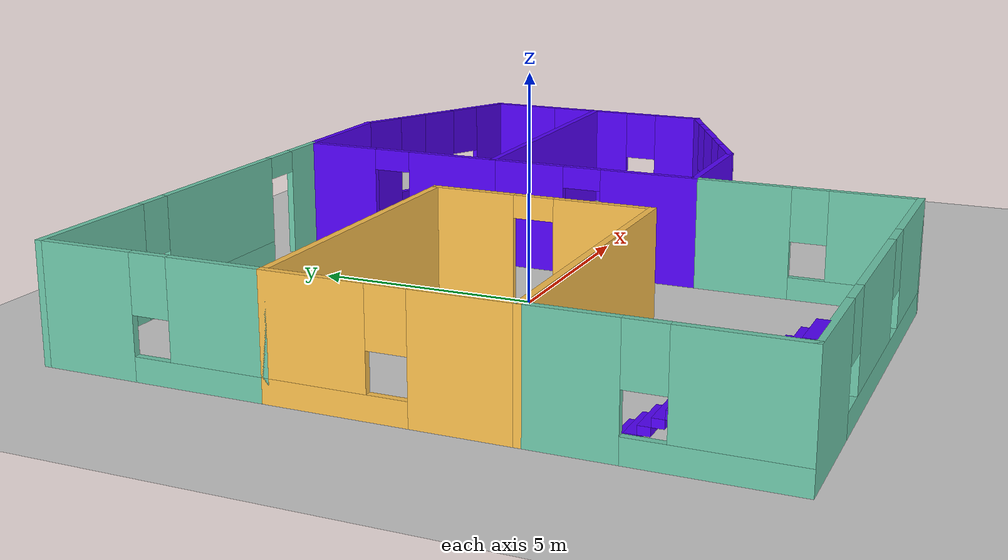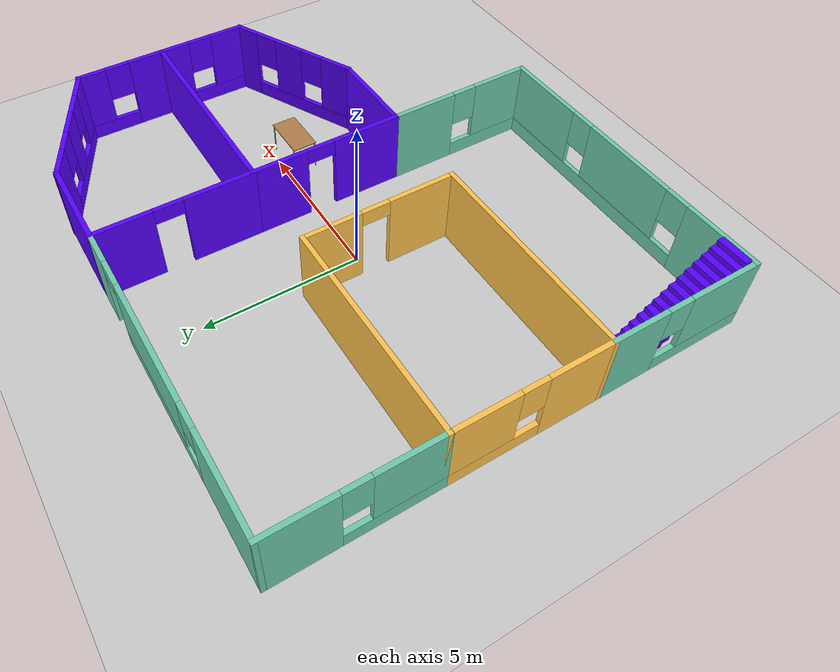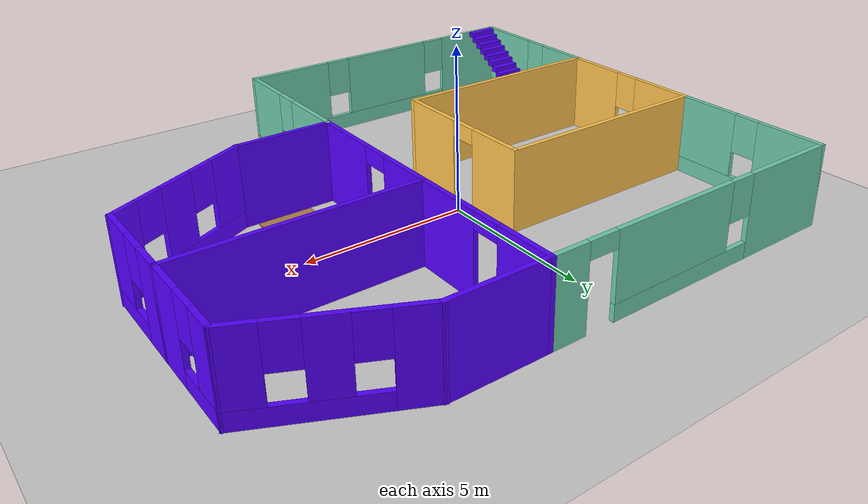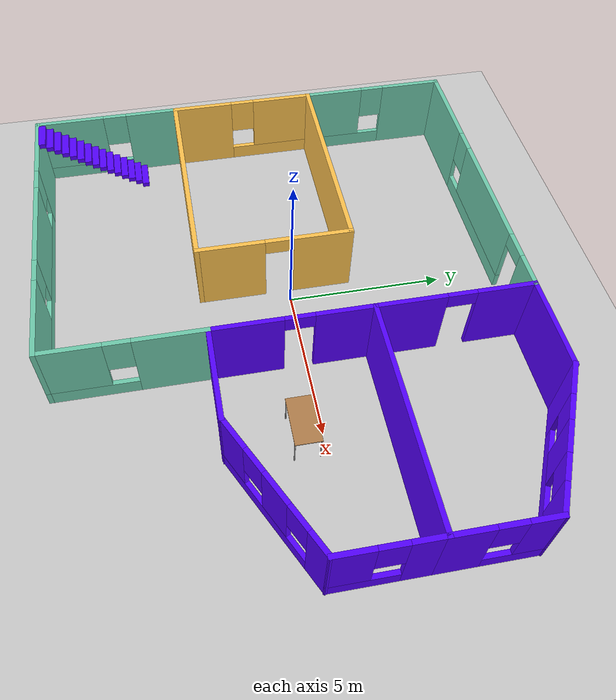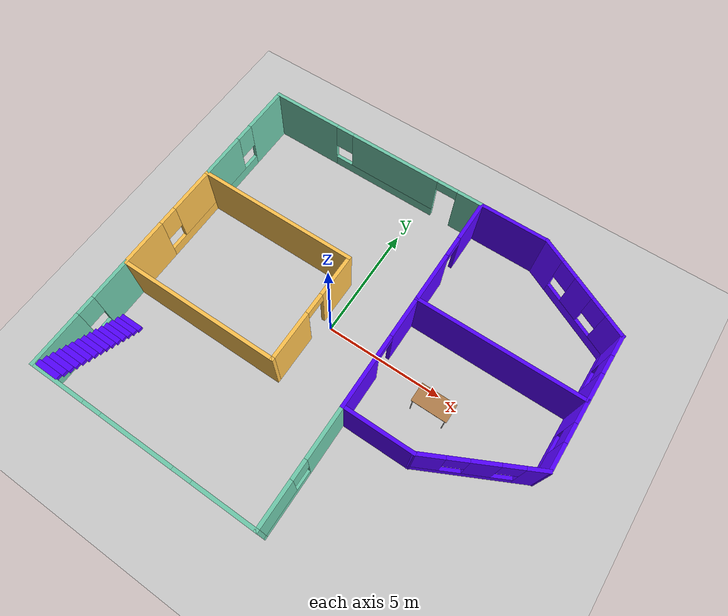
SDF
<sdf version="1.6">
 <world name="default">
  <model name="ground_plane">
   <static>1</static>
   <link name="link">
    <collision name="collision">
     <geometry><plane><normal>0 0 1</normal><size>100 100</size></plane></geometry>
     <surface><friction><ode><mu>100</mu><mu2>50</mu2></ode></friction></surface>
    </collision>
    <visual name="visual">
     <cast_shadows>0</cast_shadows>
     <geometry><plane><normal>0 0 1</normal><size>100 100</size></plane></geometry>
     <material>
      <script><uri>file://media/materials/scripts/gazebo.material</uri><name>Gazebo/Grey</name></script>
     </material>
    </visual>
   </link>
  </model>
  <model name="building">
   <pose>1.04082 -0.442603 0 0 -0 0</pose>
   <link name="Stairs_0">
    <visual name="Stairs_0_Visual_0">
     <pose>-7.75322 -3.8606 0.083333 0 -0 0</pose>
     <geometry><box><size>1 0.233333 0.166667</size></box></geometry>
     <material>
      <script><uri>file://media/materials/scripts/gazebo.material</uri><name>Gazebo/Grey</name></script>
      <ambient>0.333333 0 1 1</ambient>
     </material>
     <meta><layer>0</layer></meta>
    </visual>
    <collision name="Stairs_0_Collision_0">
     <geometry><box><size>1 0.233333 0.166667</size></box></geometry>
     <pose>-7.75322 -3.8606 0.083333 0 -0 0</pose>
    </collision>
    <visual name="Stairs_0_Visual_1">
     <pose>-7.75322 -4.09394 0.25 0 -0 0</pose>
     <geometry><box><size>1 0.233333 0.166667</size></box></geometry>
     <material>
      <script><uri>file://media/materials/scripts/gazebo.material</uri><name>Gazebo/Grey</name></script>
      <ambient>0.333333 0 1 1</ambient>
     </material>
     <meta><layer>0</layer></meta>
    </visual>
    <collision name="Stairs_0_Collision_1">
     <geometry><box><size>1 0.233333 0.166667</size></box></geometry>
     <pose>-7.75322 -4.09394 0.25 0 -0 0</pose>
    </collision>
    <visual name="Stairs_0_Visual_2">
     <pose>-7.75322 -4.32727 0.416667 0 -0 0</pose>
     <geometry><box><size>1 0.233333 0.166667</size></box></geometry>
     <material>
      <script><uri>file://media/materials/scripts/gazebo.material</uri><name>Gazebo/Grey</name></script>
      <ambient>0.333333 0 1 1</ambient>
     </material>
     <meta><layer>0</layer></meta>
    </visual>
    <collision name="Stairs_0_Collision_2">
     <geometry><box><size>1 0.233333 0.166667</size></box></geometry>
     <pose>-7.75322 -4.32727 0.416667 0 -0 0</pose>
    </collision>
    <visual name="Stairs_0_Visual_3">
     <pose>-7.75322 -4.5606 0.583333 0 -0 0</pose>
     <geometry><box><size>1 0.233333 0.166667</size></box></geometry>
     <material>
      <script><uri>file://media/materials/scripts/gazebo.material</uri><name>Gazebo/Grey</name></script>
      <ambient>0.333333 0 1 1</ambient>
     </material>
     <meta><layer>0</layer></meta>
    </visual>
    <collision name="Stairs_0_Collision_3">
     <geometry><box><size>1 0.233333 0.166667</size></box></geometry>
     <pose>-7.75322 -4.5606 0.583333 0 -0 0</pose>
    </collision>
    <visual name="Stairs_0_Visual_4">
     <pose>-7.75322 -4.79394 0.75 0 -0 0</pose>
     <geometry><box><size>1 0.233333 0.166667</size></box></geometry>
     <material>
      <script><uri>file://media/materials/scripts/gazebo.material</uri><name>Gazebo/Grey</name></script>
      <ambient>0.333333 0 1 1</ambient>
     </material>
     <meta><layer>0</layer></meta>
    </visual>
    <collision name="Stairs_0_Collision_4">
     <geometry><box><size>1 0.233333 0.166667</size></box></geometry>
     <pose>-7.75322 -4.79394 0.75 0 -0 0</pose>
    </collision>
    <visual name="Stairs_0_Visual_5">
     <pose>-7.75322 -5.02727 0.916667 0 -0 0</pose>
     <geometry><box><size>1 0.233333 0.166667</size></box></geometry>
     <material>
      <script><uri>file://media/materials/scripts/gazebo.material</uri><name>Gazebo/Grey</name></script>
      <ambient>0.333333 0 1 1</ambient>
     </material>
     <meta><layer>0</layer></meta>
    </visual>
    <collision name="Stairs_0_Collision_5">
     <geometry><box><size>1 0.233333 0.166667</size></box></geometry>
     <pose>-7.75322 -5.02727 0.916667 0 -0 0</pose>
    </collision>
    <visual name="Stairs_0_Visual_6">
     <pose>-7.75322 -5.2606 1.08333 0 -0 0</pose>
     <geometry><box><size>1 0.233333 0.166667</size></box></geometry>
     <material>
      <script><uri>file://media/materials/scripts/gazebo.material</uri><name>Gazebo/Grey</name></script>
      <ambient>0.333333 0 1 1</ambient>
     </material>
     <meta><layer>0</layer></meta>
    </visual>
    <collision name="Stairs_0_Collision_6">
     <geometry><box><size>1 0.233333 0.166667</size></box></geometry>
     <pose>-7.75322 -5.2606 1.08333 0 -0 0</pose>
    </collision>
    <visual name="Stairs_0_Visual_7">
     <pose>-7.75322 -5.49394 1.25 0 -0 0</pose>
     <geometry><box><size>1 0.233333 0.166667</size></box></geometry>
     <material>
      <script><uri>file://media/materials/scripts/gazebo.material</uri><name>Gazebo/Grey</name></script>
      <ambient>0.333333 0 1 1</ambient>
     </material>
     <meta><layer>0</layer></meta>
    </visual>
    <collision name="Stairs_0_Collision_7">
     <geometry><box><size>1 0.233333 0.166667</size></box></geometry>
     <pose>-7.75322 -5.49394 1.25 0 -0 0</pose>
    </collision>
    <visual name="Stairs_0_Visual_8">
     <pose>-7.75322 -5.72727 1.41667 0 -0 0</pose>
     <geometry><box><size>1 0.233333 0.166667</size></box></geometry>
     <material>
      <script><uri>file://media/materials/scripts/gazebo.material</uri><name>Gazebo/Grey</name></script>
      <ambient>0.333333 0 1 1</ambient>
     </material>
     <meta><layer>0</layer></meta>
    </visual>
    <collision name="Stairs_0_Collision_8">
     <geometry><box><size>1 0.233333 0.166667</size></box></geometry>
     <pose>-7.75322 -5.72727 1.41667 0 -0 0</pose>
    </collision>
    <visual name="Stairs_0_Visual_9">
     <pose>-7.75322 -5.9606 1.58333 0 -0 0</pose>
     <geometry><box><size>1 0.233333 0.166667</size></box></geometry>
     <material>
      <script><uri>file://media/materials/scripts/gazebo.material</uri><name>Gazebo/Grey</name></script>
      <ambient>0.333333 0 1 1</ambient>
     </material>
     <meta><layer>0</layer></meta>
    </visual>
    <collision name="Stairs_0_Collision_9">
     <geometry><box><size>1 0.233333 0.166667</size></box></geometry>
     <pose>-7.75322 -5.9606 1.58333 0 -0 0</pose>
    </collision>
    <visual name="Stairs_0_Visual_10">
     <pose>-7.75322 -6.19394 1.75 0 -0 0</pose>
     <geometry><box><size>1 0.233333 0.166667</size></box></geometry>
     <material>
      <script><uri>file://media/materials/scripts/gazebo.material</uri><name>Gazebo/Grey</name></script>
      <ambient>0.333333 0 1 1</ambient>
     </material>
     <meta><layer>0</layer></meta>
    </visual>
    <collision name="Stairs_0_Collision_10">
     <geometry><box><size>1 0.233333 0.166667</size></box></geometry>
     <pose>-7.75322 -6.19394 1.75 0 -0 0</pose>
    </collision>
    <visual name="Stairs_0_Visual_11">
     <pose>-7.75322 -6.42727 1.91667 0 -0 0</pose>
     <geometry><box><size>1 0.233333 0.166667</size></box></geometry>
     <material>
      <script><uri>file://media/materials/scripts/gazebo.material</uri><name>Gazebo/Grey</name></script>
      <ambient>0.333333 0 1 1</ambient>
     </material>
     <meta><layer>0</layer></meta>
    </visual>
    <collision name="Stairs_0_Collision_11">
     <geometry><box><size>1 0.233333 0.166667</size></box></geometry>
     <pose>-7.75322 -6.42727 1.91667 0 -0 0</pose>
    </collision>
    <visual name="Stairs_0_Visual_12">
     <pose>-7.75322 -6.6606 2.08333 0 -0 0</pose>
     <geometry><box><size>1 0.233333 0.166667</size></box></geometry>
     <material>
      <script><uri>file://media/materials/scripts/gazebo.material</uri><name>Gazebo/Grey</name></script>
      <ambient>0.333333 0 1 1</ambient>
     </material>
     <meta><layer>0</layer></meta>
    </visual>
    <collision name="Stairs_0_Collision_12">
     <geometry><box><size>1 0.233333 0.166667</size></box></geometry>
     <pose>-7.75322 -6.6606 2.08333 0 -0 0</pose>
    </collision>
    <visual name="Stairs_0_Visual_13">
     <pose>-7.75322 -6.89394 2.25 0 -0 0</pose>
     <geometry><box><size>1 0.233333 0.166667</size></box></geometry>
     <material>
      <script><uri>file://media/materials/scripts/gazebo.material</uri><name>Gazebo/Grey</name></script>
      <ambient>0.333333 0 1 1</ambient>
     </material>
     <meta><layer>0</layer></meta>
    </visual>
    <collision name="Stairs_0_Collision_13">
     <geometry><box><size>1 0.233333 0.166667</size></box></geometry>
     <pose>-7.75322 -6.89394 2.25 0 -0 0</pose>
    </collision>
    <visual name="Stairs_0_Visual_14">
     <pose>-7.75322 -7.12727 2.41667 0 -0 0</pose>
     <geometry><box><size>1 0.233333 0.166667</size></box></geometry>
     <material>
      <script><uri>file://media/materials/scripts/gazebo.material</uri><name>Gazebo/Grey</name></script>
      <ambient>0.333333 0 1 1</ambient>
     </material>
     <meta><layer>0</layer></meta>
    </visual>
    <collision name="Stairs_0_Collision_14">
     <geometry><box><size>1 0.233333 0.166667</size></box></geometry>
     <pose>-7.75322 -7.12727 2.41667 0 -0 0</pose>
    </collision>
   </link>
   <link name="Wall_11">
    <pose>-8.36281 -4.86281 0 0 0 -1.5708</pose>
    <visual name="Wall_11_Visual_0">
     <pose>-1.578 0 1.25 0 -0 0</pose>
     <geometry><box><size>1.84401 0.15 2.5</size></box></geometry>
     <material>
      <script><uri>file://media/materials/scripts/gazebo.material</uri><name>Gazebo/Grey</name></script>
      <ambient>0.435294 0.796078 0.67451 1</ambient>
     </material>
     <meta><layer>0</layer></meta>
    </visual>
    <collision name="Wall_11_Collision_0">
     <geometry><box><size>1.84401 0.15 2.5</size></box></geometry>
     <pose>-1.578 0 1.25 0 -0 0</pose>
    </collision>
    <visual name="Wall_11_Visual_1">
     <pose>0.922004 0 0.25 0 -0 0</pose>
     <geometry><box><size>3.15599 0.15 0.5</size></box></geometry>
     <material>
      <script><uri>file://media/materials/scripts/gazebo.material</uri><name>Gazebo/Grey</name></script>
      <ambient>0.435294 0.796078 0.67451 1</ambient>
     </material>
     <meta><layer>0</layer></meta>
    </visual>
    <collision name="Wall_11_Collision_1">
     <geometry><box><size>3.15599 0.15 0.5</size></box></geometry>
     <pose>0.922004 0 0.25 0 -0 0</pose>
    </collision>
    <visual name="Wall_11_Visual_2">
     <pose>1.322 0 1.5 0 -0 0</pose>
     <geometry><box><size>2.35599 0.15 2</size></box></geometry>
     <material>
      <script><uri>file://media/materials/scripts/gazebo.material</uri><name>Gazebo/Grey</name></script>
      <ambient>0.435294 0.796078 0.67451 1</ambient>
     </material>
     <meta><layer>0</layer></meta>
    </visual>
    <collision name="Wall_11_Collision_2">
     <geometry><box><size>2.35599 0.15 2</size></box></geometry>
     <pose>1.322 0 1.5 0 -0 0</pose>
    </collision>
    <visual name="Wall_11_Visual_3">
     <pose>-0.255991 0 1.9 0 -0 0</pose>
     <geometry><box><size>0.8 0.15 1.2</size></box></geometry>
     <material>
      <script><uri>file://media/materials/scripts/gazebo.material</uri><name>Gazebo/Grey</name></script>
      <ambient>0.435294 0.796078 0.67451 1</ambient>
     </material>
     <meta><layer>0</layer></meta>
    </visual>
    <collision name="Wall_11_Collision_3">
     <geometry><box><size>0.8 0.15 1.2</size></box></geometry>
     <pose>-0.255991 0 1.9 0 -0 0</pose>
    </collision>
   </link>
   <link name="Wall_12">
    <pose>-3.43781 -7.28781 0 0 -0 0</pose>
    <visual name="Wall_12_Visual_0">
     <pose>-3.75645 0 1.25 0 -0 0</pose>
     <geometry><box><size>2.48709 0.15 2.5</size></box></geometry>
     <material>
      <script><uri>file://media/materials/scripts/gazebo.material</uri><name>Gazebo/Grey</name></script>
      <ambient>0.435294 0.796078 0.67451 1</ambient>
     </material>
     <meta><layer>0</layer></meta>
    </visual>
    <collision name="Wall_12_Collision_0">
     <geometry><box><size>2.48709 0.15 2.5</size></box></geometry>
     <pose>-3.75645 0 1.25 0 -0 0</pose>
    </collision>
    <visual name="Wall_12_Visual_1">
     <pose>1.24354 0 0.25 0 -0 0</pose>
     <geometry><box><size>7.51291 0.15 0.5</size></box></geometry>
     <material>
      <script><uri>file://media/materials/scripts/gazebo.material</uri><name>Gazebo/Grey</name></script>
      <ambient>0.435294 0.796078 0.67451 1</ambient>
     </material>
     <meta><layer>0</layer></meta>
    </visual>
    <collision name="Wall_12_Collision_1">
     <geometry><box><size>7.51291 0.15 0.5</size></box></geometry>
     <pose>1.24354 0 0.25 0 -0 0</pose>
    </collision>
    <visual name="Wall_12_Visual_2">
     <pose>-0.124545 0 1.5 0 -0 0</pose>
     <geometry><box><size>3.17673 0.15 2</size></box></geometry>
     <material>
      <script><uri>file://media/materials/scripts/gazebo.material</uri><name>Gazebo/Grey</name></script>
      <ambient>0.435294 0.796078 0.67451 1</ambient>
     </material>
     <meta><layer>0</layer></meta>
    </visual>
    <collision name="Wall_12_Collision_2">
     <geometry><box><size>3.17673 0.15 2</size></box></geometry>
     <pose>-0.124545 0 1.5 0 -0 0</pose>
    </collision>
    <visual name="Wall_12_Visual_3">
     <pose>3.63191 0 1.5 0 -0 0</pose>
     <geometry><box><size>2.73618 0.15 2</size></box></geometry>
     <material>
      <script><uri>file://media/materials/scripts/gazebo.material</uri><name>Gazebo/Grey</name></script>
      <ambient>0.435294 0.796078 0.67451 1</ambient>
     </material>
     <meta><layer>0</layer></meta>
    </visual>
    <collision name="Wall_12_Collision_3">
     <geometry><box><size>2.73618 0.15 2</size></box></geometry>
     <pose>3.63191 0 1.5 0 -0 0</pose>
    </collision>
    <visual name="Wall_12_Visual_4">
     <pose>-2.11291 0 1.9 0 -0 0</pose>
     <geometry><box><size>0.8 0.15 1.2</size></box></geometry>
     <material>
      <script><uri>file://media/materials/scripts/gazebo.material</uri><name>Gazebo/Grey</name></script>
      <ambient>0.435294 0.796078 0.67451 1</ambient>
     </material>
     <meta><layer>0</layer></meta>
    </visual>
    <collision name="Wall_12_Collision_4">
     <geometry><box><size>0.8 0.15 1.2</size></box></geometry>
     <pose>-2.11291 0 1.9 0 -0 0</pose>
    </collision>
    <visual name="Wall_12_Visual_5">
     <pose>1.86382 0 1.9 0 -0 0</pose>
     <geometry><box><size>0.8 0.15 1.2</size></box></geometry>
     <material>
      <script><uri>file://media/materials/scripts/gazebo.material</uri><name>Gazebo/Grey</name></script>
      <ambient>0.435294 0.796078 0.67451 1</ambient>
     </material>
     <meta><layer>0</layer></meta>
    </visual>
    <collision name="Wall_12_Collision_5">
     <geometry><box><size>0.8 0.15 1.2</size></box></geometry>
     <pose>1.86382 0 1.9 0 -0 0</pose>
    </collision>
   </link>
   <link name="Wall_15">
    <pose>-3.43781 7.26219 0 0 -0 0</pose>
    <visual name="Wall_15_Visual_0">
     <pose>-3.45055 0 1.25 0 -0 0</pose>
     <geometry><box><size>3.09889 0.15 2.5</size></box></geometry>
     <material>
      <script><uri>file://media/materials/scripts/gazebo.material</uri><name>Gazebo/Grey</name></script>
      <ambient>0.435294 0.796078 0.67451 1</ambient>
     </material>
     <meta><layer>0</layer></meta>
    </visual>
    <collision name="Wall_15_Collision_0">
     <geometry><box><size>3.09889 0.15 2.5</size></box></geometry>
     <pose>-3.45055 0 1.25 0 -0 0</pose>
    </collision>
    <visual name="Wall_15_Visual_1">
     <pose>4.42166 0 1.25 0 -0 0</pose>
     <geometry><box><size>1.15667 0.15 2.5</size></box></geometry>
     <material>
      <script><uri>file://media/materials/scripts/gazebo.material</uri><name>Gazebo/Grey</name></script>
      <ambient>0.435294 0.796078 0.67451 1</ambient>
     </material>
     <meta><layer>0</layer></meta>
    </visual>
    <collision name="Wall_15_Collision_1">
     <geometry><box><size>1.15667 0.15 2.5</size></box></geometry>
     <pose>4.42166 0 1.25 0 -0 0</pose>
    </collision>
    <visual name="Wall_15_Visual_2">
     <pose>0.521113 0 0.25 0 -0 0</pose>
     <geometry><box><size>4.84444 0.15 0.5</size></box></geometry>
     <material>
      <script><uri>file://media/materials/scripts/gazebo.material</uri><name>Gazebo/Grey</name></script>
      <ambient>0.435294 0.796078 0.67451 1</ambient>
     </material>
     <meta><layer>0</layer></meta>
    </visual>
    <collision name="Wall_15_Collision_2">
     <geometry><box><size>4.84444 0.15 0.5</size></box></geometry>
     <pose>0.521113 0 0.25 0 -0 0</pose>
    </collision>
    <visual name="Wall_15_Visual_3">
     <pose>0.921113 0 1.5 0 -0 0</pose>
     <geometry><box><size>4.04444 0.15 2</size></box></geometry>
     <material>
      <script><uri>file://media/materials/scripts/gazebo.material</uri><name>Gazebo/Grey</name></script>
      <ambient>0.435294 0.796078 0.67451 1</ambient>
     </material>
     <meta><layer>0</layer></meta>
    </visual>
    <collision name="Wall_15_Collision_3">
     <geometry><box><size>4.04444 0.15 2</size></box></geometry>
     <pose>0.921113 0 1.5 0 -0 0</pose>
    </collision>
    <visual name="Wall_15_Visual_4">
     <pose>-1.50111 0 1.9 0 -0 0</pose>
     <geometry><box><size>0.8 0.15 1.2</size></box></geometry>
     <material>
      <script><uri>file://media/materials/scripts/gazebo.material</uri><name>Gazebo/Grey</name></script>
      <ambient>0.435294 0.796078 0.67451 1</ambient>
     </material>
     <meta><layer>0</layer></meta>
    </visual>
    <collision name="Wall_15_Collision_4">
     <geometry><box><size>0.8 0.15 1.2</size></box></geometry>
     <pose>-1.50111 0 1.9 0 -0 0</pose>
    </collision>
    <visual name="Wall_15_Visual_5">
     <pose>3.39333 0 2.25 0 -0 0</pose>
     <geometry><box><size>0.9 0.15 0.5</size></box></geometry>
     <material>
      <script><uri>file://media/materials/scripts/gazebo.material</uri><name>Gazebo/Grey</name></script>
      <ambient>0.435294 0.796078 0.67451 1</ambient>
     </material>
     <meta><layer>0</layer></meta>
    </visual>
    <collision name="Wall_15_Collision_5">
     <geometry><box><size>0.9 0.15 0.5</size></box></geometry>
     <pose>3.39333 0 2.25 0 -0 0</pose>
    </collision>
   </link>
   <link name="Wall_20">
    <pose>1.48719 4.83719 0 0 0 -1.5708</pose>
    <visual name="Wall_20_Visual_0">
     <pose>-1.57096 0 1.25 0 -0 0</pose>
     <geometry><box><size>1.85809 0.15 2.5</size></box></geometry>
     <material>
      <script><uri>file://media/materials/scripts/gazebo.material</uri><name>Gazebo/Grey</name></script>
      <ambient>0.333333 0 1 1</ambient>
     </material>
     <meta><layer>0</layer></meta>
    </visual>
    <collision name="Wall_20_Collision_0">
     <geometry><box><size>1.85809 0.15 2.5</size></box></geometry>
     <pose>-1.57096 0 1.25 0 -0 0</pose>
    </collision>
    <visual name="Wall_20_Visual_1">
     <pose>1.37904 0 1.25 0 -0 0</pose>
     <geometry><box><size>2.24191 0.15 2.5</size></box></geometry>
     <material>
      <script><uri>file://media/materials/scripts/gazebo.material</uri><name>Gazebo/Grey</name></script>
      <ambient>0.333333 0 1 1</ambient>
     </material>
     <meta><layer>0</layer></meta>
    </visual>
    <collision name="Wall_20_Collision_1">
     <geometry><box><size>2.24191 0.15 2.5</size></box></geometry>
     <pose>1.37904 0 1.25 0 -0 0</pose>
    </collision>
    <visual name="Wall_20_Visual_2">
     <pose>-0.191914 0 2.25 0 -0 0</pose>
     <geometry><box><size>0.9 0.15 0.5</size></box></geometry>
     <material>
      <script><uri>file://media/materials/scripts/gazebo.material</uri><name>Gazebo/Grey</name></script>
      <ambient>0.333333 0 1 1</ambient>
     </material>
     <meta><layer>0</layer></meta>
    </visual>
    <collision name="Wall_20_Collision_2">
     <geometry><box><size>0.9 0.15 0.5</size></box></geometry>
     <pose>-0.191914 0 2.25 0 -0 0</pose>
    </collision>
   </link>
   <link name="Wall_21">
    <collision name="Wall_21_Collision">
     <geometry><box><size>7 0.15 2.5</size></box></geometry>
     <pose>0 0 1.25 0 -0 0</pose>
    </collision>
    <visual name="Wall_21_Visual">
     <pose>0 0 1.25 0 -0 0</pose>
     <geometry><box><size>7 0.15 2.5</size></box></geometry>
     <material>
      <script><uri>file://media/materials/scripts/gazebo.material</uri><name>Gazebo/Grey</name></script>
      <ambient>0.333333 0 1 1</ambient>
     </material>
     <meta><layer>0</layer></meta>
    </visual>
    <pose>4.91219 2.41219 0 0 -0 0</pose>
   </link>
   <link name="Wall_22">
    <pose>8.33719 3.83719 0 0 -0 1.5708</pose>
    <visual name="Wall_22_Visual_0">
     <pose>-0.874077 0 1.25 0 -0 0</pose>
     <geometry><box><size>1.25185 0.15 2.5</size></box></geometry>
     <material>
      <script><uri>file://media/materials/scripts/gazebo.material</uri><name>Gazebo/Grey</name></script>
      <ambient>0.333333 0 1 1</ambient>
     </material>
     <meta><layer>0</layer></meta>
    </visual>
    <collision name="Wall_22_Collision_0">
     <geometry><box><size>1.25185 0.15 2.5</size></box></geometry>
     <pose>-0.874077 0 1.25 0 -0 0</pose>
    </collision>
    <visual name="Wall_22_Visual_1">
     <pose>0.625923 0 0.25 0 -0 0</pose>
     <geometry><box><size>1.74815 0.15 0.5</size></box></geometry>
     <material>
      <script><uri>file://media/materials/scripts/gazebo.material</uri><name>Gazebo/Grey</name></script>
      <ambient>0.333333 0 1 1</ambient>
     </material>
     <meta><layer>0</layer></meta>
    </visual>
    <collision name="Wall_22_Collision_1">
     <geometry><box><size>1.74815 0.15 0.5</size></box></geometry>
     <pose>0.625923 0 0.25 0 -0 0</pose>
    </collision>
    <visual name="Wall_22_Visual_2">
     <pose>1.02592 0 1.5 0 -0 0</pose>
     <geometry><box><size>0.948155 0.15 2</size></box></geometry>
     <material>
      <script><uri>file://media/materials/scripts/gazebo.material</uri><name>Gazebo/Grey</name></script>
      <ambient>0.333333 0 1 1</ambient>
     </material>
     <meta><layer>0</layer></meta>
    </visual>
    <collision name="Wall_22_Collision_2">
     <geometry><box><size>0.948155 0.15 2</size></box></geometry>
     <pose>1.02592 0 1.5 0 -0 0</pose>
    </collision>
    <visual name="Wall_22_Visual_3">
     <pose>0.151845 0 1.9 0 -0 0</pose>
     <geometry><box><size>0.8 0.15 1.2</size></box></geometry>
     <material>
      <script><uri>file://media/materials/scripts/gazebo.material</uri><name>Gazebo/Grey</name></script>
      <ambient>0.333333 0 1 1</ambient>
     </material>
     <meta><layer>0</layer></meta>
    </visual>
    <collision name="Wall_22_Collision_3">
     <geometry><box><size>0.8 0.15 1.2</size></box></geometry>
     <pose>0.151845 0 1.9 0 -0 0</pose>
    </collision>
   </link>
   <link name="Wall_24">
    <collision name="Wall_24_Collision">
     <geometry><box><size>3 0.15 2.5</size></box></geometry>
     <pose>0 0 1.25 0 -0 0</pose>
    </collision>
    <visual name="Wall_24_Visual">
     <pose>0 0 1.25 0 -0 0</pose>
     <geometry><box><size>3 0.15 2.5</size></box></geometry>
     <material>
      <script><uri>file://media/materials/scripts/gazebo.material</uri><name>Gazebo/Grey</name></script>
      <ambient>0.333333 0 1 1</ambient>
     </material>
     <meta><layer>0</layer></meta>
    </visual>
    <pose>2.91219 7.26219 0 0 -0 0</pose>
   </link>
   <link name="Wall_25">
    <pose>6.33719 6.26219 0 0 0 -0.463648</pose>
    <visual name="Wall_25_Visual_0">
     <pose>-1.77228 0 1.25 0 -0 0</pose>
     <geometry><box><size>1.07758 0.15 2.5</size></box></geometry>
     <material>
      <script><uri>file://media/materials/scripts/gazebo.material</uri><name>Gazebo/Grey</name></script>
      <ambient>0.333333 0 1 1</ambient>
     </material>
     <meta><layer>0</layer></meta>
    </visual>
    <collision name="Wall_25_Collision_0">
     <geometry><box><size>1.07758 0.15 2.5</size></box></geometry>
     <pose>-1.77228 0 1.25 0 -0 0</pose>
    </collision>
    <visual name="Wall_25_Visual_1">
     <pose>0.538789 0 0.25 0 -0 0</pose>
     <geometry><box><size>3.54456 0.15 0.5</size></box></geometry>
     <material>
      <script><uri>file://media/materials/scripts/gazebo.material</uri><name>Gazebo/Grey</name></script>
      <ambient>0.333333 0 1 1</ambient>
     </material>
     <meta><layer>0</layer></meta>
    </visual>
    <collision name="Wall_25_Collision_1">
     <geometry><box><size>3.54456 0.15 0.5</size></box></geometry>
     <pose>0.538789 0 0.25 0 -0 0</pose>
    </collision>
    <visual name="Wall_25_Visual_2">
     <pose>0.048894 0 1.5 0 -0 0</pose>
     <geometry><box><size>0.964767 0.15 2</size></box></geometry>
     <material>
      <script><uri>file://media/materials/scripts/gazebo.material</uri><name>Gazebo/Grey</name></script>
      <ambient>0.333333 0 1 1</ambient>
     </material>
     <meta><layer>0</layer></meta>
    </visual>
    <collision name="Wall_25_Collision_2">
     <geometry><box><size>0.964767 0.15 2</size></box></geometry>
     <pose>0.048894 0 1.5 0 -0 0</pose>
    </collision>
    <visual name="Wall_25_Visual_3">
     <pose>1.82117 0 1.5 0 -0 0</pose>
     <geometry><box><size>0.97979 0.15 2</size></box></geometry>
     <material>
      <script><uri>file://media/materials/scripts/gazebo.material</uri><name>Gazebo/Grey</name></script>
      <ambient>0.333333 0 1 1</ambient>
     </material>
     <meta><layer>0</layer></meta>
    </visual>
    <collision name="Wall_25_Collision_3">
     <geometry><box><size>0.97979 0.15 2</size></box></geometry>
     <pose>1.82117 0 1.5 0 -0 0</pose>
    </collision>
    <visual name="Wall_25_Visual_4">
     <pose>-0.83349 0 1.9 0 -0 0</pose>
     <geometry><box><size>0.8 0.15 1.2</size></box></geometry>
     <material>
      <script><uri>file://media/materials/scripts/gazebo.material</uri><name>Gazebo/Grey</name></script>
      <ambient>0.333333 0 1 1</ambient>
     </material>
     <meta><layer>0</layer></meta>
    </visual>
    <collision name="Wall_25_Collision_4">
     <geometry><box><size>0.8 0.15 1.2</size></box></geometry>
     <pose>-0.83349 0 1.9 0 -0 0</pose>
    </collision>
    <visual name="Wall_25_Visual_5">
     <pose>0.931278 0 1.9 0 -0 0</pose>
     <geometry><box><size>0.8 0.15 1.2</size></box></geometry>
     <material>
      <script><uri>file://media/materials/scripts/gazebo.material</uri><name>Gazebo/Grey</name></script>
      <ambient>0.333333 0 1 1</ambient>
     </material>
     <meta><layer>0</layer></meta>
    </visual>
    <collision name="Wall_25_Collision_5">
     <geometry><box><size>0.8 0.15 1.2</size></box></geometry>
     <pose>0.931278 0 1.9 0 -0 0</pose>
    </collision>
   </link>
   <link name="Wall_27">
    <pose>1.48719 -0.012812 0 0 0 -1.5708</pose>
    <visual name="Wall_27_Visual_0">
     <pose>-1.57933 0 1.25 0 -0 0</pose>
     <geometry><box><size>1.84134 0.15 2.5</size></box></geometry>
     <material>
      <script><uri>file://media/materials/scripts/gazebo.material</uri><name>Gazebo/Grey</name></script>
      <ambient>0.333333 0 1 1</ambient>
     </material>
     <meta><layer>0</layer></meta>
    </visual>
    <collision name="Wall_27_Collision_0">
     <geometry><box><size>1.84134 0.15 2.5</size></box></geometry>
     <pose>-1.57933 0 1.25 0 -0 0</pose>
    </collision>
    <visual name="Wall_27_Visual_1">
     <pose>1.37067 0 1.25 0 -0 0</pose>
     <geometry><box><size>2.25866 0.15 2.5</size></box></geometry>
     <material>
      <script><uri>file://media/materials/scripts/gazebo.material</uri><name>Gazebo/Grey</name></script>
      <ambient>0.333333 0 1 1</ambient>
     </material>
     <meta><layer>0</layer></meta>
    </visual>
    <collision name="Wall_27_Collision_1">
     <geometry><box><size>2.25866 0.15 2.5</size></box></geometry>
     <pose>1.37067 0 1.25 0 -0 0</pose>
    </collision>
    <visual name="Wall_27_Visual_2">
     <pose>-0.208657 0 2.25 0 -0 0</pose>
     <geometry><box><size>0.9 0.15 0.5</size></box></geometry>
     <material>
      <script><uri>file://media/materials/scripts/gazebo.material</uri><name>Gazebo/Grey</name></script>
      <ambient>0.333333 0 1 1</ambient>
     </material>
     <meta><layer>0</layer></meta>
    </visual>
    <collision name="Wall_27_Collision_2">
     <geometry><box><size>0.9 0.15 0.5</size></box></geometry>
     <pose>-0.208657 0 2.25 0 -0 0</pose>
    </collision>
   </link>
   <link name="Wall_28">
    <collision name="Wall_28_Collision">
     <geometry><box><size>3 0.15 2.5</size></box></geometry>
     <pose>0 0 1.25 0 -0 0</pose>
    </collision>
    <visual name="Wall_28_Visual">
     <pose>0 0 1.25 0 -0 0</pose>
     <geometry><box><size>3 0.15 2.5</size></box></geometry>
     <material>
      <script><uri>file://media/materials/scripts/gazebo.material</uri><name>Gazebo/Grey</name></script>
      <ambient>0.333333 0 1 1</ambient>
     </material>
     <meta><layer>0</layer></meta>
    </visual>
    <pose>2.91219 -2.43781 0 0 -0 0</pose>
   </link>
   <link name="Wall_30">
    <pose>8.33719 0.987188 0 0 0 -1.5708</pose>
    <visual name="Wall_30_Visual_0">
     <pose>-0.997887 0 1.25 0 -0 0</pose>
     <geometry><box><size>1.00423 0.15 2.5</size></box></geometry>
     <material>
      <script><uri>file://media/materials/scripts/gazebo.material</uri><name>Gazebo/Grey</name></script>
      <ambient>0.333333 0 1 1</ambient>
     </material>
     <meta><layer>0</layer></meta>
    </visual>
    <collision name="Wall_30_Collision_0">
     <geometry><box><size>1.00423 0.15 2.5</size></box></geometry>
     <pose>-0.997887 0 1.25 0 -0 0</pose>
    </collision>
    <visual name="Wall_30_Visual_1">
     <pose>0.502113 0 0.25 0 -0 0</pose>
     <geometry><box><size>1.99577 0.15 0.5</size></box></geometry>
     <material>
      <script><uri>file://media/materials/scripts/gazebo.material</uri><name>Gazebo/Grey</name></script>
      <ambient>0.333333 0 1 1</ambient>
     </material>
     <meta><layer>0</layer></meta>
    </visual>
    <collision name="Wall_30_Collision_1">
     <geometry><box><size>1.99577 0.15 0.5</size></box></geometry>
     <pose>0.502113 0 0.25 0 -0 0</pose>
    </collision>
    <visual name="Wall_30_Visual_2">
     <pose>0.902113 0 1.5 0 -0 0</pose>
     <geometry><box><size>1.19577 0.15 2</size></box></geometry>
     <material>
      <script><uri>file://media/materials/scripts/gazebo.material</uri><name>Gazebo/Grey</name></script>
      <ambient>0.333333 0 1 1</ambient>
     </material>
     <meta><layer>0</layer></meta>
    </visual>
    <collision name="Wall_30_Collision_2">
     <geometry><box><size>1.19577 0.15 2</size></box></geometry>
     <pose>0.902113 0 1.5 0 -0 0</pose>
    </collision>
    <visual name="Wall_30_Visual_3">
     <pose>-0.095774 0 1.9 0 -0 0</pose>
     <geometry><box><size>0.8 0.15 1.2</size></box></geometry>
     <material>
      <script><uri>file://media/materials/scripts/gazebo.material</uri><name>Gazebo/Grey</name></script>
      <ambient>0.333333 0 1 1</ambient>
     </material>
     <meta><layer>0</layer></meta>
    </visual>
    <collision name="Wall_30_Collision_3">
     <geometry><box><size>0.8 0.15 1.2</size></box></geometry>
     <pose>-0.095774 0 1.9 0 -0 0</pose>
    </collision>
   </link>
   <link name="Wall_31">
    <pose>6.33719 -1.43781 0 0 0 -2.67794</pose>
    <visual name="Wall_31_Visual_0">
     <pose>-1.89022 0 1.25 0 -0 0</pose>
     <geometry><box><size>0.841691 0.15 2.5</size></box></geometry>
     <material>
      <script><uri>file://media/materials/scripts/gazebo.material</uri><name>Gazebo/Grey</name></script>
      <ambient>0.333333 0 1 1</ambient>
     </material>
     <meta><layer>0</layer></meta>
    </visual>
    <collision name="Wall_31_Collision_0">
     <geometry><box><size>0.841691 0.15 2.5</size></box></geometry>
     <pose>-1.89022 0 1.25 0 -0 0</pose>
    </collision>
    <visual name="Wall_31_Visual_1">
     <pose>0.420845 0 0.25 0 -0 0</pose>
     <geometry><box><size>3.78044 0.15 0.5</size></box></geometry>
     <material>
      <script><uri>file://media/materials/scripts/gazebo.material</uri><name>Gazebo/Grey</name></script>
      <ambient>0.333333 0 1 1</ambient>
     </material>
     <meta><layer>0</layer></meta>
    </visual>
    <collision name="Wall_31_Collision_1">
     <geometry><box><size>3.78044 0.15 0.5</size></box></geometry>
     <pose>0.420845 0 0.25 0 -0 0</pose>
    </collision>
    <visual name="Wall_31_Visual_2">
     <pose>-0.145953 0 1.5 0 -0 0</pose>
     <geometry><box><size>1.04685 0.15 2</size></box></geometry>
     <material>
      <script><uri>file://media/materials/scripts/gazebo.material</uri><name>Gazebo/Grey</name></script>
      <ambient>0.333333 0 1 1</ambient>
     </material>
     <meta><layer>0</layer></meta>
    </visual>
    <collision name="Wall_31_Collision_2">
     <geometry><box><size>1.04685 0.15 2</size></box></geometry>
     <pose>-0.145953 0 1.5 0 -0 0</pose>
    </collision>
    <visual name="Wall_31_Visual_3">
     <pose>1.74427 0 1.5 0 -0 0</pose>
     <geometry><box><size>1.1336 0.15 2</size></box></geometry>
     <material>
      <script><uri>file://media/materials/scripts/gazebo.material</uri><name>Gazebo/Grey</name></script>
      <ambient>0.333333 0 1 1</ambient>
     </material>
     <meta><layer>0</layer></meta>
    </visual>
    <collision name="Wall_31_Collision_3">
     <geometry><box><size>1.1336 0.15 2</size></box></geometry>
     <pose>1.74427 0 1.5 0 -0 0</pose>
    </collision>
    <visual name="Wall_31_Visual_4">
     <pose>-1.06938 0 1.9 0 -0 0</pose>
     <geometry><box><size>0.8 0.15 1.2</size></box></geometry>
     <material>
      <script><uri>file://media/materials/scripts/gazebo.material</uri><name>Gazebo/Grey</name></script>
      <ambient>0.333333 0 1 1</ambient>
     </material>
     <meta><layer>0</layer></meta>
    </visual>
    <collision name="Wall_31_Collision_4">
     <geometry><box><size>0.8 0.15 1.2</size></box></geometry>
     <pose>-1.06938 0 1.9 0 -0 0</pose>
    </collision>
    <visual name="Wall_31_Visual_5">
     <pose>0.777472 0 1.9 0 -0 0</pose>
     <geometry><box><size>0.8 0.15 1.2</size></box></geometry>
     <material>
      <script><uri>file://media/materials/scripts/gazebo.material</uri><name>Gazebo/Grey</name></script>
      <ambient>0.333333 0 1 1</ambient>
     </material>
     <meta><layer>0</layer></meta>
    </visual>
    <collision name="Wall_31_Collision_5">
     <geometry><box><size>0.8 0.15 1.2</size></box></geometry>
     <pose>0.777472 0 1.9 0 -0 0</pose>
    </collision>
   </link>
   <link name="Wall_33">
    <pose>1.48719 -4.86281 0 0 0 -1.5708</pose>
    <visual name="Wall_33_Visual_0">
     <pose>-1.37916 0 1.25 0 -0 0</pose>
     <geometry><box><size>2.24168 0.15 2.5</size></box></geometry>
     <material>
      <script><uri>file://media/materials/scripts/gazebo.material</uri><name>Gazebo/Grey</name></script>
      <ambient>0.435294 0.796078 0.67451 1</ambient>
     </material>
     <meta><layer>0</layer></meta>
    </visual>
    <collision name="Wall_33_Collision_0">
     <geometry><box><size>2.24168 0.15 2.5</size></box></geometry>
     <pose>-1.37916 0 1.25 0 -0 0</pose>
    </collision>
    <visual name="Wall_33_Visual_1">
     <pose>1.12084 0 0.25 0 -0 0</pose>
     <geometry><box><size>2.75832 0.15 0.5</size></box></geometry>
     <material>
      <script><uri>file://media/materials/scripts/gazebo.material</uri><name>Gazebo/Grey</name></script>
      <ambient>0.435294 0.796078 0.67451 1</ambient>
     </material>
     <meta><layer>0</layer></meta>
    </visual>
    <collision name="Wall_33_Collision_1">
     <geometry><box><size>2.75832 0.15 0.5</size></box></geometry>
     <pose>1.12084 0 0.25 0 -0 0</pose>
    </collision>
    <visual name="Wall_33_Visual_2">
     <pose>1.52084 0 1.5 0 -0 0</pose>
     <geometry><box><size>1.95832 0.15 2</size></box></geometry>
     <material>
      <script><uri>file://media/materials/scripts/gazebo.material</uri><name>Gazebo/Grey</name></script>
      <ambient>0.435294 0.796078 0.67451 1</ambient>
     </material>
     <meta><layer>0</layer></meta>
    </visual>
    <collision name="Wall_33_Collision_2">
     <geometry><box><size>1.95832 0.15 2</size></box></geometry>
     <pose>1.52084 0 1.5 0 -0 0</pose>
    </collision>
    <visual name="Wall_33_Visual_3">
     <pose>0.141682 0 1.9 0 -0 0</pose>
     <geometry><box><size>0.8 0.15 1.2</size></box></geometry>
     <material>
      <script><uri>file://media/materials/scripts/gazebo.material</uri><name>Gazebo/Grey</name></script>
      <ambient>0.435294 0.796078 0.67451 1</ambient>
     </material>
     <meta><layer>0</layer></meta>
    </visual>
    <collision name="Wall_33_Collision_3">
     <geometry><box><size>0.8 0.15 1.2</size></box></geometry>
     <pose>0.141682 0 1.9 0 -0 0</pose>
    </collision>
   </link>
   <link name="Wall_4">
    <pose>-8.36281 4.83719 0 0 0 -1.5708</pose>
    <visual name="Wall_4_Visual_0">
     <pose>-1.43889 0 1.25 0 -0 0</pose>
     <geometry><box><size>2.12222 0.15 2.5</size></box></geometry>
     <material>
      <script><uri>file://media/materials/scripts/gazebo.material</uri><name>Gazebo/Grey</name></script>
      <ambient>0.435294 0.796078 0.67451 1</ambient>
     </material>
     <meta><layer>0</layer></meta>
    </visual>
    <collision name="Wall_4_Collision_0">
     <geometry><box><size>2.12222 0.15 2.5</size></box></geometry>
     <pose>-1.43889 0 1.25 0 -0 0</pose>
    </collision>
    <visual name="Wall_4_Visual_1">
     <pose>1.06111 0 0.25 0 -0 0</pose>
     <geometry><box><size>2.87778 0.15 0.5</size></box></geometry>
     <material>
      <script><uri>file://media/materials/scripts/gazebo.material</uri><name>Gazebo/Grey</name></script>
      <ambient>0.435294 0.796078 0.67451 1</ambient>
     </material>
     <meta><layer>0</layer></meta>
    </visual>
    <collision name="Wall_4_Collision_1">
     <geometry><box><size>2.87778 0.15 0.5</size></box></geometry>
     <pose>1.06111 0 0.25 0 -0 0</pose>
    </collision>
    <visual name="Wall_4_Visual_2">
     <pose>1.46111 0 1.5 0 -0 0</pose>
     <geometry><box><size>2.07778 0.15 2</size></box></geometry>
     <material>
      <script><uri>file://media/materials/scripts/gazebo.material</uri><name>Gazebo/Grey</name></script>
      <ambient>0.435294 0.796078 0.67451 1</ambient>
     </material>
     <meta><layer>0</layer></meta>
    </visual>
    <collision name="Wall_4_Collision_2">
     <geometry><box><size>2.07778 0.15 2</size></box></geometry>
     <pose>1.46111 0 1.5 0 -0 0</pose>
    </collision>
    <visual name="Wall_4_Visual_3">
     <pose>0.022218 0 1.9 0 -0 0</pose>
     <geometry><box><size>0.8 0.15 1.2</size></box></geometry>
     <material>
      <script><uri>file://media/materials/scripts/gazebo.material</uri><name>Gazebo/Grey</name></script>
      <ambient>0.435294 0.796078 0.67451 1</ambient>
     </material>
     <meta><layer>0</layer></meta>
    </visual>
    <collision name="Wall_4_Collision_3">
     <geometry><box><size>0.8 0.15 1.2</size></box></geometry>
     <pose>0.022218 0 1.9 0 -0 0</pose>
    </collision>
   </link>
   <link name="Wall_6">
    <collision name="Wall_6_Collision">
     <geometry><box><size>7 0.15 2.5</size></box></geometry>
     <pose>0 0 1.25 0 -0 0</pose>
    </collision>
    <visual name="Wall_6_Visual">
     <pose>0 0 1.25 0 -0 0</pose>
     <geometry><box><size>7 0.15 2.5</size></box></geometry>
     <material>
      <script><uri>file://media/materials/scripts/gazebo.material</uri><name>Gazebo/Grey</name></script>
      <ambient>1 0.764706 0.305882 1</ambient>
     </material>
     <meta><layer>0</layer></meta>
    </visual>
    <pose>-4.93781 2.41219 0 0 -0 0</pose>
   </link>
   <link name="Wall_7">
    <pose>-1.51281 -0.012812 0 0 0 -1.5708</pose>
    <visual name="Wall_7_Visual_0">
     <pose>-1.54874 0 1.25 0 -0 0</pose>
     <geometry><box><size>1.90252 0.15 2.5</size></box></geometry>
     <material>
      <script><uri>file://media/materials/scripts/gazebo.material</uri><name>Gazebo/Grey</name></script>
      <ambient>1 0.764706 0.305882 1</ambient>
     </material>
     <meta><layer>0</layer></meta>
    </visual>
    <collision name="Wall_7_Collision_0">
     <geometry><box><size>1.90252 0.15 2.5</size></box></geometry>
     <pose>-1.54874 0 1.25 0 -0 0</pose>
    </collision>
    <visual name="Wall_7_Visual_1">
     <pose>1.40126 0 1.25 0 -0 0</pose>
     <geometry><box><size>2.19748 0.15 2.5</size></box></geometry>
     <material>
      <script><uri>file://media/materials/scripts/gazebo.material</uri><name>Gazebo/Grey</name></script>
      <ambient>1 0.764706 0.305882 1</ambient>
     </material>
     <meta><layer>0</layer></meta>
    </visual>
    <collision name="Wall_7_Collision_1">
     <geometry><box><size>2.19748 0.15 2.5</size></box></geometry>
     <pose>1.40126 0 1.25 0 -0 0</pose>
    </collision>
    <visual name="Wall_7_Visual_2">
     <pose>-0.147477 0 2.25 0 -0 0</pose>
     <geometry><box><size>0.9 0.15 0.5</size></box></geometry>
     <material>
      <script><uri>file://media/materials/scripts/gazebo.material</uri><name>Gazebo/Grey</name></script>
      <ambient>1 0.764706 0.305882 1</ambient>
     </material>
     <meta><layer>0</layer></meta>
    </visual>
    <collision name="Wall_7_Collision_2">
     <geometry><box><size>0.9 0.15 0.5</size></box></geometry>
     <pose>-0.147477 0 2.25 0 -0 0</pose>
    </collision>
   </link>
   <link name="Wall_8">
    <collision name="Wall_8_Collision">
     <geometry><box><size>7 0.15 2.5</size></box></geometry>
     <pose>0 0 1.25 0 -0 0</pose>
    </collision>
    <visual name="Wall_8_Visual">
     <pose>0 0 1.25 0 -0 0</pose>
     <geometry><box><size>7 0.15 2.5</size></box></geometry>
     <material>
      <script><uri>file://media/materials/scripts/gazebo.material</uri><name>Gazebo/Grey</name></script>
      <ambient>1 0.764706 0.305882 1</ambient>
     </material>
     <meta><layer>0</layer></meta>
    </visual>
    <pose>-4.93781 -2.43781 0 0 -0 3.14159</pose>
   </link>
   <link name="Wall_9">
    <pose>-8.36281 -0.012812 0 0 -0 1.5708</pose>
    <visual name="Wall_9_Visual_0">
     <pose>-1.45274 0 1.25 0 -0 0</pose>
     <geometry><box><size>2.09453 0.15 2.5</size></box></geometry>
     <material>
      <script><uri>file://media/materials/scripts/gazebo.material</uri><name>Gazebo/Grey</name></script>
      <ambient>1 0.764706 0.305882 1</ambient>
     </material>
     <meta><layer>0</layer></meta>
    </visual>
    <collision name="Wall_9_Collision_0">
     <geometry><box><size>2.09453 0.15 2.5</size></box></geometry>
     <pose>-1.45274 0 1.25 0 -0 0</pose>
    </collision>
    <visual name="Wall_9_Visual_1">
     <pose>1.04726 0 0.25 0 -0 0</pose>
     <geometry><box><size>2.90547 0.15 0.5</size></box></geometry>
     <material>
      <script><uri>file://media/materials/scripts/gazebo.material</uri><name>Gazebo/Grey</name></script>
      <ambient>1 0.764706 0.305882 1</ambient>
     </material>
     <meta><layer>0</layer></meta>
    </visual>
    <collision name="Wall_9_Collision_1">
     <geometry><box><size>2.90547 0.15 0.5</size></box></geometry>
     <pose>1.04726 0 0.25 0 -0 0</pose>
    </collision>
    <visual name="Wall_9_Visual_2">
     <pose>1.44726 0 1.5 0 -0 0</pose>
     <geometry><box><size>2.10547 0.15 2</size></box></geometry>
     <material>
      <script><uri>file://media/materials/scripts/gazebo.material</uri><name>Gazebo/Grey</name></script>
      <ambient>1 0.764706 0.305882 1</ambient>
     </material>
     <meta><layer>0</layer></meta>
    </visual>
    <collision name="Wall_9_Collision_2">
     <geometry><box><size>2.10547 0.15 2</size></box></geometry>
     <pose>1.44726 0 1.5 0 -0 0</pose>
    </collision>
    <visual name="Wall_9_Visual_3">
     <pose>-0.005474 0 1.9 0 -0 0</pose>
     <geometry><box><size>0.8 0.15 1.2</size></box></geometry>
     <material>
      <script><uri>file://media/materials/scripts/gazebo.material</uri><name>Gazebo/Grey</name></script>
      <ambient>1 0.764706 0.305882 1</ambient>
     </material>
     <meta><layer>0</layer></meta>
    </visual>
    <collision name="Wall_9_Collision_3">
     <geometry><box><size>0.8 0.15 1.2</size></box></geometry>
     <pose>-0.005474 0 1.9 0 -0 0</pose>
    </collision>
   </link>
   <static>1</static>
  </model>
  <model name="table_1">
   <static>1</static>
   <link name="link">
    <collision name="surface">
     <pose>0 0 1 0 -0 0</pose>
     <geometry><box><size>1.5 0.8 0.03</size></box></geometry>
     <surface><friction><ode><mu>0.6</mu><mu2>0.6</mu2></ode></friction></surface>
    </collision>
    <visual name="visual1">
     <pose>0 0 1 0 -0 0</pose>
     <geometry><box><size>1.5 0.8 0.03</size></box></geometry>
     <material>
      <script><uri>file://media/materials/scripts/gazebo.material</uri><name>Gazebo/Wood</name></script>
     </material>
    </visual>
    <collision name="front_left_leg">
     <pose>0.68 0.38 0.5 0 -0 0</pose>
     <geometry><cylinder><radius>0.02</radius><length>1</length></cylinder></geometry>
    </collision>
    <visual name="front_left_leg">
     <pose>0.68 0.38 0.5 0 -0 0</pose>
     <geometry><cylinder><radius>0.02</radius><length>1</length></cylinder></geometry>
     <material>
      <script><uri>file://media/materials/scripts/gazebo.material</uri><name>Gazebo/Grey</name></script>
     </material>
    </visual>
    <collision name="front_right_leg">
     <pose>0.68 -0.38 0.5 0 -0 0</pose>
     <geometry><cylinder><radius>0.02</radius><length>1</length></cylinder></geometry>
    </collision>
    <visual name="front_right_leg">
     <pose>0.68 -0.38 0.5 0 -0 0</pose>
     <geometry><cylinder><radius>0.02</radius><length>1</length></cylinder></geometry>
     <material>
      <script><uri>file://media/materials/scripts/gazebo.material</uri><name>Gazebo/Grey</name></script>
     </material>
    </visual>
    <collision name="back_right_leg">
     <pose>-0.68 -0.38 0.5 0 -0 0</pose>
     <geometry><cylinder><radius>0.02</radius><length>1</length></cylinder></geometry>
    </collision>
    <visual name="back_right_leg">
     <pose>-0.68 -0.38 0.5 0 -0 0</pose>
     <geometry><cylinder><radius>0.02</radius><length>1</length></cylinder></geometry>
     <material>
      <script><uri>file://media/materials/scripts/gazebo.material</uri><name>Gazebo/Grey</name></script>
     </material>
    </visual>
    <collision name="back_left_leg">
     <pose>-0.68 0.38 0.5 0 -0 0</pose>
     <geometry><cylinder><radius>0.02</radius><length>1</length></cylinder></geometry>
    </collision>
    <visual name="back_left_leg">
     <pose>-0.68 0.38 0.5 0 -0 0</pose>
     <geometry><cylinder><radius>0.02</radius><length>1</length></cylinder></geometry>
     <material>
      <script><uri>file://media/materials/scripts/gazebo.material</uri><name>Gazebo/Grey</name></script>
     </material>
    </visual>
   </link>
   <pose>4.99214 -0.587638 0 0 -0 0</pose>
  </model>
 </world>
</sdf>
